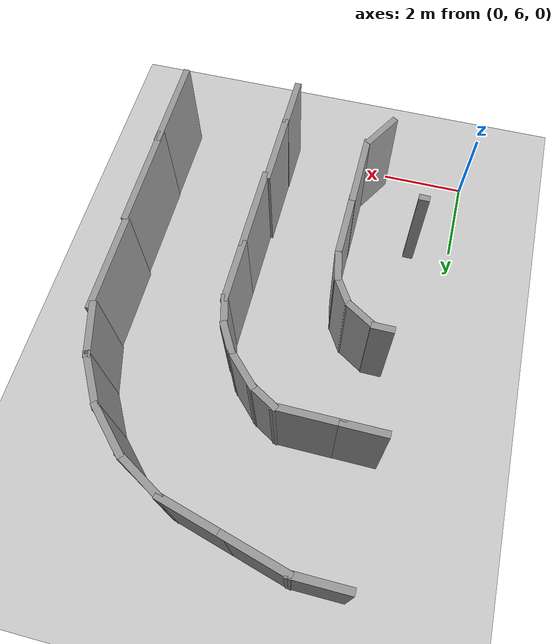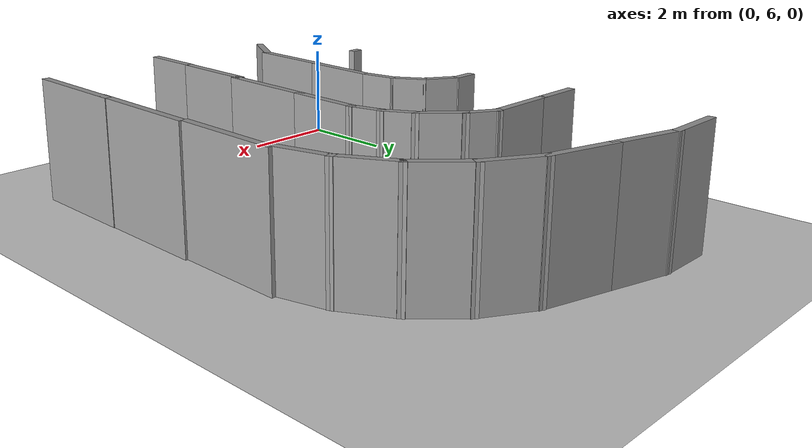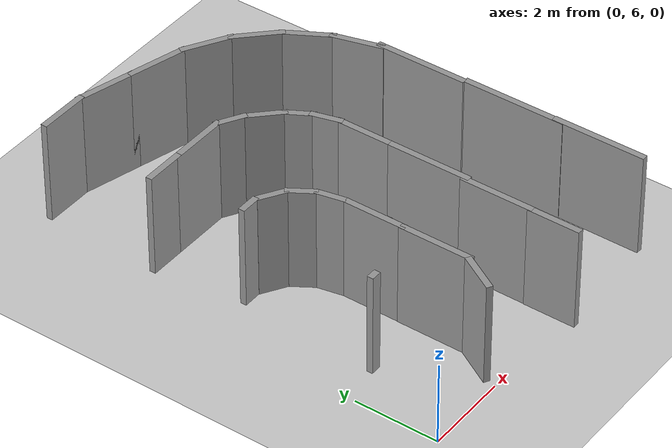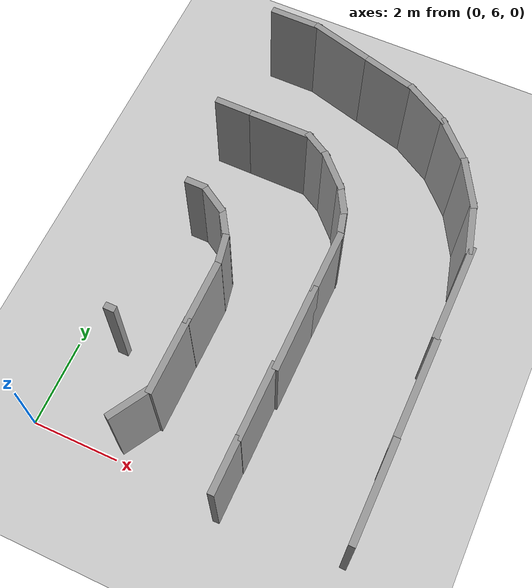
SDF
<sdf version="1.6">
 <world name="default">
  <model name="ground_plane">
   <static>1</static>
   <link name="link">
    <collision name="collision">
     <geometry><plane><normal>0 0 1</normal><size>100 100</size></plane></geometry>
     <surface><friction><ode><mu>100</mu><mu2>50</mu2></ode></friction></surface>
    </collision>
    <visual name="visual">
     <cast_shadows>0</cast_shadows>
     <geometry><plane><normal>0 0 1</normal><size>100 100</size></plane></geometry>
     <material>
      <script><uri>file://media/materials/scripts/gazebo.material</uri><name>Gazebo/Grey</name></script>
     </material>
    </visual>
   </link>
  </model>
  <model name="c-Snail_update">
   <link name="Wall_19">
    <pose>0.800174 -5.81597 0 0 -0 0</pose>
    <visual name="Wall_19_Visual">
     <pose>0 0 1.25 0 -0 0</pose>
     <geometry><box><size>2.25 0.15 2.5</size></box></geometry>
     <material>
      <script><uri>file://media/materials/scripts/gazebo.material</uri><name>Gazebo/Grey</name></script>
      <ambient>1 1 1 1</ambient>
     </material>
     <meta><layer>0</layer></meta>
    </visual>
    <collision name="Wall_19_Collision">
     <pose>0 0 1.25 0 -0 0</pose>
     <geometry><box><size>2.25 0.15 2.5</size></box></geometry>
     <surface>
      <friction>
       <ode><mu>1</mu><mu2>1</mu2><fdir1>0 0 0</fdir1><slip1>0</slip1><slip2>0</slip2></ode>
       <torsional>
        <coefficient>1</coefficient>
        <patch_radius>0</patch_radius>
        <surface_radius>0</surface_radius>
        <use_patch_radius>1</use_patch_radius>
        <ode><slip>0</slip></ode>
       </torsional>
      </friction>
      <bounce><restitution_coefficient>0</restitution_coefficient><threshold>1e+06</threshold></bounce>
      <contact>
       <collide_without_contact>0</collide_without_contact>
       <collide_without_contact_bitmask>1</collide_without_contact_bitmask>
       <collide_bitmask>1</collide_bitmask>
       <ode>
        <soft_cfm>0</soft_cfm>
        <soft_erp>0.2</soft_erp>
        <kp>1e+13</kp>
        <kd>1</kd>
        <max_vel>0.01</max_vel>
        <min_depth>0</min_depth>
       </ode>
       <bullet>
        <split_impulse>1</split_impulse>
        <split_impulse_penetration_threshold>-0.01</split_impulse_penetration_threshold>
        <soft_cfm>0</soft_cfm>
        <soft_erp>0.2</soft_erp>
        <kp>1e+13</kp>
        <kd>1</kd>
       </bullet>
      </contact>
     </surface>
    </collision>
   </link>
   <link name="Wall_20">
    <pose>2.90214 -5.80096 0 0 -0 0</pose>
    <visual name="Wall_20_Visual">
     <pose>0 0 1.25 0 -0 0</pose>
     <geometry><box><size>2.5 0.15 2.5</size></box></geometry>
     <material>
      <script><uri>file://media/materials/scripts/gazebo.material</uri><name>Gazebo/Grey</name></script>
      <ambient>1 1 1 1</ambient>
     </material>
     <meta><layer>0</layer></meta>
    </visual>
    <collision name="Wall_20_Collision">
     <pose>0 0 1.25 0 -0 0</pose>
     <geometry><box><size>2.5 0.15 2.5</size></box></geometry>
     <surface>
      <friction>
       <ode><mu>1</mu><mu2>1</mu2><fdir1>0 0 0</fdir1><slip1>0</slip1><slip2>0</slip2></ode>
       <torsional>
        <coefficient>1</coefficient>
        <patch_radius>0</patch_radius>
        <surface_radius>0</surface_radius>
        <use_patch_radius>1</use_patch_radius>
        <ode><slip>0</slip></ode>
       </torsional>
      </friction>
      <bounce><restitution_coefficient>0</restitution_coefficient><threshold>1e+06</threshold></bounce>
      <contact>
       <collide_without_contact>0</collide_without_contact>
       <collide_without_contact_bitmask>1</collide_without_contact_bitmask>
       <collide_bitmask>1</collide_bitmask>
       <ode>
        <soft_cfm>0</soft_cfm>
        <soft_erp>0.2</soft_erp>
        <kp>1e+13</kp>
        <kd>1</kd>
        <max_vel>0.01</max_vel>
        <min_depth>0</min_depth>
       </ode>
       <bullet>
        <split_impulse>1</split_impulse>
        <split_impulse_penetration_threshold>-0.01</split_impulse_penetration_threshold>
        <soft_cfm>0</soft_cfm>
        <soft_erp>0.2</soft_erp>
        <kp>1e+13</kp>
        <kd>1</kd>
       </bullet>
      </contact>
     </surface>
    </collision>
   </link>
   <link name="Wall_21">
    <pose>5.25228 -5.75509 0 0 -0 0</pose>
    <visual name="Wall_21_Visual">
     <pose>0 0 1.25 0 -0 0</pose>
     <geometry><box><size>2.25 0.15 2.5</size></box></geometry>
     <material>
      <script><uri>file://media/materials/scripts/gazebo.material</uri><name>Gazebo/Grey</name></script>
      <ambient>1 1 1 1</ambient>
     </material>
     <meta><layer>0</layer></meta>
    </visual>
    <collision name="Wall_21_Collision">
     <pose>0 0 1.25 0 -0 0</pose>
     <geometry><box><size>2.25 0.15 2.5</size></box></geometry>
     <surface>
      <friction>
       <ode><mu>1</mu><mu2>1</mu2><fdir1>0 0 0</fdir1><slip1>0</slip1><slip2>0</slip2></ode>
       <torsional>
        <coefficient>1</coefficient>
        <patch_radius>0</patch_radius>
        <surface_radius>0</surface_radius>
        <use_patch_radius>1</use_patch_radius>
        <ode><slip>0</slip></ode>
       </torsional>
      </friction>
      <bounce><restitution_coefficient>0</restitution_coefficient><threshold>1e+06</threshold></bounce>
      <contact>
       <collide_without_contact>0</collide_without_contact>
       <collide_without_contact_bitmask>1</collide_without_contact_bitmask>
       <collide_bitmask>1</collide_bitmask>
       <ode>
        <soft_cfm>0</soft_cfm>
        <soft_erp>0.2</soft_erp>
        <kp>1e+13</kp>
        <kd>1</kd>
        <max_vel>0.01</max_vel>
        <min_depth>0</min_depth>
       </ode>
       <bullet>
        <split_impulse>1</split_impulse>
        <split_impulse_penetration_threshold>-0.01</split_impulse_penetration_threshold>
        <soft_cfm>0</soft_cfm>
        <soft_erp>0.2</soft_erp>
        <kp>1e+13</kp>
        <kd>1</kd>
       </bullet>
      </contact>
     </surface>
    </collision>
   </link>
   <link name="Wall_22">
    <pose>6.78859 -5.56286 0 0 -0 0.261799</pose>
    <visual name="Wall_22_Visual">
     <pose>0 0 1.25 0 -0 0</pose>
     <geometry><box><size>1.25 0.15 2.5</size></box></geometry>
     <material>
      <script><uri>file://media/materials/scripts/gazebo.material</uri><name>Gazebo/Grey</name></script>
      <ambient>1 1 1 1</ambient>
     </material>
     <meta><layer>0</layer></meta>
    </visual>
    <collision name="Wall_22_Collision">
     <pose>0 0 1.25 0 -0 0</pose>
     <geometry><box><size>1.25 0.15 2.5</size></box></geometry>
     <surface>
      <friction>
       <ode><mu>1</mu><mu2>1</mu2><fdir1>0 0 0</fdir1><slip1>0</slip1><slip2>0</slip2></ode>
       <torsional>
        <coefficient>1</coefficient>
        <patch_radius>0</patch_radius>
        <surface_radius>0</surface_radius>
        <use_patch_radius>1</use_patch_radius>
        <ode><slip>0</slip></ode>
       </torsional>
      </friction>
      <bounce><restitution_coefficient>0</restitution_coefficient><threshold>1e+06</threshold></bounce>
      <contact>
       <collide_without_contact>0</collide_without_contact>
       <collide_without_contact_bitmask>1</collide_without_contact_bitmask>
       <collide_bitmask>1</collide_bitmask>
       <ode>
        <soft_cfm>0</soft_cfm>
        <soft_erp>0.2</soft_erp>
        <kp>1e+13</kp>
        <kd>1</kd>
        <max_vel>0.01</max_vel>
        <min_depth>0</min_depth>
       </ode>
       <bullet>
        <split_impulse>1</split_impulse>
        <split_impulse_penetration_threshold>-0.01</split_impulse_penetration_threshold>
        <soft_cfm>0</soft_cfm>
        <soft_erp>0.2</soft_erp>
        <kp>1e+13</kp>
        <kd>1</kd>
       </bullet>
      </contact>
     </surface>
    </collision>
   </link>
   <link name="Wall_23">
    <pose>7.79617 -5.14551 0 0 -0 0.523599</pose>
    <visual name="Wall_23_Visual">
     <pose>0 0 1.25 0 -0 0</pose>
     <geometry><box><size>1.25 0.15 2.5</size></box></geometry>
     <material>
      <script><uri>file://media/materials/scripts/gazebo.material</uri><name>Gazebo/Grey</name></script>
      <ambient>1 1 1 1</ambient>
     </material>
     <meta><layer>0</layer></meta>
    </visual>
    <collision name="Wall_23_Collision">
     <pose>0 0 1.25 0 -0 0</pose>
     <geometry><box><size>1.25 0.15 2.5</size></box></geometry>
     <surface>
      <friction>
       <ode><mu>1</mu><mu2>1</mu2><fdir1>0 0 0</fdir1><slip1>0</slip1><slip2>0</slip2></ode>
       <torsional>
        <coefficient>1</coefficient>
        <patch_radius>0</patch_radius>
        <surface_radius>0</surface_radius>
        <use_patch_radius>1</use_patch_radius>
        <ode><slip>0</slip></ode>
       </torsional>
      </friction>
      <bounce><restitution_coefficient>0</restitution_coefficient><threshold>1e+06</threshold></bounce>
      <contact>
       <collide_without_contact>0</collide_without_contact>
       <collide_without_contact_bitmask>1</collide_without_contact_bitmask>
       <collide_bitmask>1</collide_bitmask>
       <ode>
        <soft_cfm>0</soft_cfm>
        <soft_erp>0.2</soft_erp>
        <kp>1e+13</kp>
        <kd>1</kd>
        <max_vel>0.01</max_vel>
        <min_depth>0</min_depth>
       </ode>
       <bullet>
        <split_impulse>1</split_impulse>
        <split_impulse_penetration_threshold>-0.01</split_impulse_penetration_threshold>
        <soft_cfm>0</soft_cfm>
        <soft_erp>0.2</soft_erp>
        <kp>1e+13</kp>
        <kd>1</kd>
       </bullet>
      </contact>
     </surface>
    </collision>
   </link>
   <link name="Wall_24">
    <pose>8.66139 -4.4816 0 0 -0 0.785398</pose>
    <visual name="Wall_24_Visual">
     <pose>0 0 1.25 0 -0 0</pose>
     <geometry><box><size>1.25 0.15 2.5</size></box></geometry>
     <material>
      <script><uri>file://media/materials/scripts/gazebo.material</uri><name>Gazebo/Grey</name></script>
      <ambient>1 1 1 1</ambient>
     </material>
     <meta><layer>0</layer></meta>
    </visual>
    <collision name="Wall_24_Collision">
     <pose>0 0 1.25 0 -0 0</pose>
     <geometry><box><size>1.25 0.15 2.5</size></box></geometry>
     <surface>
      <friction>
       <ode><mu>1</mu><mu2>1</mu2><fdir1>0 0 0</fdir1><slip1>0</slip1><slip2>0</slip2></ode>
       <torsional>
        <coefficient>1</coefficient>
        <patch_radius>0</patch_radius>
        <surface_radius>0</surface_radius>
        <use_patch_radius>1</use_patch_radius>
        <ode><slip>0</slip></ode>
       </torsional>
      </friction>
      <bounce><restitution_coefficient>0</restitution_coefficient><threshold>1e+06</threshold></bounce>
      <contact>
       <collide_without_contact>0</collide_without_contact>
       <collide_without_contact_bitmask>1</collide_without_contact_bitmask>
       <collide_bitmask>1</collide_bitmask>
       <ode>
        <soft_cfm>0</soft_cfm>
        <soft_erp>0.2</soft_erp>
        <kp>1e+13</kp>
        <kd>1</kd>
        <max_vel>0.01</max_vel>
        <min_depth>0</min_depth>
       </ode>
       <bullet>
        <split_impulse>1</split_impulse>
        <split_impulse_penetration_threshold>-0.01</split_impulse_penetration_threshold>
        <soft_cfm>0</soft_cfm>
        <soft_erp>0.2</soft_erp>
        <kp>1e+13</kp>
        <kd>1</kd>
       </bullet>
      </contact>
     </surface>
    </collision>
   </link>
   <link name="Wall_25">
    <pose>9.3253 -3.61638 0 0 -0 1.0472</pose>
    <visual name="Wall_25_Visual">
     <pose>0 0 1.25 0 -0 0</pose>
     <geometry><box><size>1.25 0.15 2.5</size></box></geometry>
     <material>
      <script><uri>file://media/materials/scripts/gazebo.material</uri><name>Gazebo/Grey</name></script>
      <ambient>1 1 1 1</ambient>
     </material>
     <meta><layer>0</layer></meta>
    </visual>
    <collision name="Wall_25_Collision">
     <pose>0 0 1.25 0 -0 0</pose>
     <geometry><box><size>1.25 0.15 2.5</size></box></geometry>
     <surface>
      <friction>
       <ode><mu>1</mu><mu2>1</mu2><fdir1>0 0 0</fdir1><slip1>0</slip1><slip2>0</slip2></ode>
       <torsional>
        <coefficient>1</coefficient>
        <patch_radius>0</patch_radius>
        <surface_radius>0</surface_radius>
        <use_patch_radius>1</use_patch_radius>
        <ode><slip>0</slip></ode>
       </torsional>
      </friction>
      <bounce><restitution_coefficient>0</restitution_coefficient><threshold>1e+06</threshold></bounce>
      <contact>
       <collide_without_contact>0</collide_without_contact>
       <collide_without_contact_bitmask>1</collide_without_contact_bitmask>
       <collide_bitmask>1</collide_bitmask>
       <ode>
        <soft_cfm>0</soft_cfm>
        <soft_erp>0.2</soft_erp>
        <kp>1e+13</kp>
        <kd>1</kd>
        <max_vel>0.01</max_vel>
        <min_depth>0</min_depth>
       </ode>
       <bullet>
        <split_impulse>1</split_impulse>
        <split_impulse_penetration_threshold>-0.01</split_impulse_penetration_threshold>
        <soft_cfm>0</soft_cfm>
        <soft_erp>0.2</soft_erp>
        <kp>1e+13</kp>
        <kd>1</kd>
       </bullet>
      </contact>
     </surface>
    </collision>
   </link>
   <link name="Wall_26">
    <pose>9.775 -2.48806 0 0 -0 1.309</pose>
    <visual name="Wall_26_Visual">
     <pose>0 0 1.25 0 -0 0</pose>
     <geometry><box><size>1.5 0.15 2.5</size></box></geometry>
     <material>
      <script><uri>file://media/materials/scripts/gazebo.material</uri><name>Gazebo/Grey</name></script>
      <ambient>1 1 1 1</ambient>
     </material>
     <meta><layer>0</layer></meta>
    </visual>
    <collision name="Wall_26_Collision">
     <pose>0 0 1.25 0 -0 0</pose>
     <geometry><box><size>1.5 0.15 2.5</size></box></geometry>
     <surface>
      <friction>
       <ode><mu>1</mu><mu2>1</mu2><fdir1>0 0 0</fdir1><slip1>0</slip1><slip2>0</slip2></ode>
       <torsional>
        <coefficient>1</coefficient>
        <patch_radius>0</patch_radius>
        <surface_radius>0</surface_radius>
        <use_patch_radius>1</use_patch_radius>
        <ode><slip>0</slip></ode>
       </torsional>
      </friction>
      <bounce><restitution_coefficient>0</restitution_coefficient><threshold>1e+06</threshold></bounce>
      <contact>
       <collide_without_contact>0</collide_without_contact>
       <collide_without_contact_bitmask>1</collide_without_contact_bitmask>
       <collide_bitmask>1</collide_bitmask>
       <ode>
        <soft_cfm>0</soft_cfm>
        <soft_erp>0.2</soft_erp>
        <kp>1e+13</kp>
        <kd>1</kd>
        <max_vel>0.01</max_vel>
        <min_depth>0</min_depth>
       </ode>
       <bullet>
        <split_impulse>1</split_impulse>
        <split_impulse_penetration_threshold>-0.01</split_impulse_penetration_threshold>
        <soft_cfm>0</soft_cfm>
        <soft_erp>0.2</soft_erp>
        <kp>1e+13</kp>
        <kd>1</kd>
       </bullet>
      </contact>
     </surface>
    </collision>
   </link>
   <link name="Wall_27">
    <pose>10.1244 -1.18406 0 0 -0 1.309</pose>
    <visual name="Wall_27_Visual">
     <pose>0 0 1.25 0 -0 0</pose>
     <geometry><box><size>1.5 0.15 2.5</size></box></geometry>
     <material>
      <script><uri>file://media/materials/scripts/gazebo.material</uri><name>Gazebo/Grey</name></script>
      <ambient>1 1 1 1</ambient>
     </material>
     <meta><layer>0</layer></meta>
    </visual>
    <collision name="Wall_27_Collision">
     <pose>0 0 1.25 0 -0 0</pose>
     <geometry><box><size>1.5 0.15 2.5</size></box></geometry>
     <surface>
      <friction>
       <ode><mu>1</mu><mu2>1</mu2><fdir1>0 0 0</fdir1><slip1>0</slip1><slip2>0</slip2></ode>
       <torsional>
        <coefficient>1</coefficient>
        <patch_radius>0</patch_radius>
        <surface_radius>0</surface_radius>
        <use_patch_radius>1</use_patch_radius>
        <ode><slip>0</slip></ode>
       </torsional>
      </friction>
      <bounce><restitution_coefficient>0</restitution_coefficient><threshold>1e+06</threshold></bounce>
      <contact>
       <collide_without_contact>0</collide_without_contact>
       <collide_without_contact_bitmask>1</collide_without_contact_bitmask>
       <collide_bitmask>1</collide_bitmask>
       <ode>
        <soft_cfm>0</soft_cfm>
        <soft_erp>0.2</soft_erp>
        <kp>1e+13</kp>
        <kd>1</kd>
        <max_vel>0.01</max_vel>
        <min_depth>0</min_depth>
       </ode>
       <bullet>
        <split_impulse>1</split_impulse>
        <split_impulse_penetration_threshold>-0.01</split_impulse_penetration_threshold>
        <soft_cfm>0</soft_cfm>
        <soft_erp>0.2</soft_erp>
        <kp>1e+13</kp>
        <kd>1</kd>
       </bullet>
      </contact>
     </surface>
    </collision>
   </link>
   <link name="Wall_28">
    <pose>10.2991 0.017937 0 0 -0 1.5708</pose>
    <visual name="Wall_28_Visual">
     <pose>0 0 1.25 0 -0 0</pose>
     <geometry><box><size>1.25 0.15 2.5</size></box></geometry>
     <material>
      <script><uri>file://media/materials/scripts/gazebo.material</uri><name>Gazebo/Grey</name></script>
      <ambient>1 1 1 1</ambient>
     </material>
     <meta><layer>0</layer></meta>
    </visual>
    <collision name="Wall_28_Collision">
     <pose>0 0 1.25 0 -0 0</pose>
     <geometry><box><size>1.25 0.15 2.5</size></box></geometry>
     <surface>
      <friction>
       <ode><mu>1</mu><mu2>1</mu2><fdir1>0 0 0</fdir1><slip1>0</slip1><slip2>0</slip2></ode>
       <torsional>
        <coefficient>1</coefficient>
        <patch_radius>0</patch_radius>
        <surface_radius>0</surface_radius>
        <use_patch_radius>1</use_patch_radius>
        <ode><slip>0</slip></ode>
       </torsional>
      </friction>
      <bounce><restitution_coefficient>0</restitution_coefficient><threshold>1e+06</threshold></bounce>
      <contact>
       <collide_without_contact>0</collide_without_contact>
       <collide_without_contact_bitmask>1</collide_without_contact_bitmask>
       <collide_bitmask>1</collide_bitmask>
       <ode>
        <soft_cfm>0</soft_cfm>
        <soft_erp>0.2</soft_erp>
        <kp>1e+13</kp>
        <kd>1</kd>
        <max_vel>0.01</max_vel>
        <min_depth>0</min_depth>
       </ode>
       <bullet>
        <split_impulse>1</split_impulse>
        <split_impulse_penetration_threshold>-0.01</split_impulse_penetration_threshold>
        <soft_cfm>0</soft_cfm>
        <soft_erp>0.2</soft_erp>
        <kp>1e+13</kp>
        <kd>1</kd>
       </bullet>
      </contact>
     </surface>
    </collision>
   </link>
   <link name="Wall_46">
    <pose>0.062812 -3.06018 0 0 -0 0</pose>
    <visual name="Wall_46_Visual">
     <pose>0 0 1.25 0 -0 0</pose>
     <geometry><box><size>1.25 0.15 2.5</size></box></geometry>
     <material>
      <script><uri>file://media/materials/scripts/gazebo.material</uri><name>Gazebo/Grey</name></script>
      <ambient>1 1 1 1</ambient>
     </material>
     <meta><layer>0</layer></meta>
    </visual>
    <collision name="Wall_46_Collision">
     <pose>0 0 1.25 0 -0 0</pose>
     <geometry><box><size>1.25 0.15 2.5</size></box></geometry>
     <surface>
      <friction>
       <ode><mu>1</mu><mu2>1</mu2><fdir1>0 0 0</fdir1><slip1>0</slip1><slip2>0</slip2></ode>
       <torsional>
        <coefficient>1</coefficient>
        <patch_radius>0</patch_radius>
        <surface_radius>0</surface_radius>
        <use_patch_radius>1</use_patch_radius>
        <ode><slip>0</slip></ode>
       </torsional>
      </friction>
      <bounce><restitution_coefficient>0</restitution_coefficient><threshold>1e+06</threshold></bounce>
      <contact>
       <collide_without_contact>0</collide_without_contact>
       <collide_without_contact_bitmask>1</collide_without_contact_bitmask>
       <collide_bitmask>1</collide_bitmask>
       <ode>
        <soft_cfm>0</soft_cfm>
        <soft_erp>0.2</soft_erp>
        <kp>1e+13</kp>
        <kd>1</kd>
        <max_vel>0.01</max_vel>
        <min_depth>0</min_depth>
       </ode>
       <bullet>
        <split_impulse>1</split_impulse>
        <split_impulse_penetration_threshold>-0.01</split_impulse_penetration_threshold>
        <soft_cfm>0</soft_cfm>
        <soft_erp>0.2</soft_erp>
        <kp>1e+13</kp>
        <kd>1</kd>
       </bullet>
      </contact>
     </surface>
    </collision>
   </link>
   <link name="Wall_47">
    <pose>1.4692 -3.06934 0 0 -0 0</pose>
    <visual name="Wall_47_Visual">
     <pose>0 0 1.25 0 -0 0</pose>
     <geometry><box><size>1.75 0.15 2.5</size></box></geometry>
     <material>
      <script><uri>file://media/materials/scripts/gazebo.material</uri><name>Gazebo/Grey</name></script>
      <ambient>1 1 1 1</ambient>
     </material>
     <meta><layer>0</layer></meta>
    </visual>
    <collision name="Wall_47_Collision">
     <pose>0 0 1.25 0 -0 0</pose>
     <geometry><box><size>1.75 0.15 2.5</size></box></geometry>
     <surface>
      <friction>
       <ode><mu>1</mu><mu2>1</mu2><fdir1>0 0 0</fdir1><slip1>0</slip1><slip2>0</slip2></ode>
       <torsional>
        <coefficient>1</coefficient>
        <patch_radius>0</patch_radius>
        <surface_radius>0</surface_radius>
        <use_patch_radius>1</use_patch_radius>
        <ode><slip>0</slip></ode>
       </torsional>
      </friction>
      <bounce><restitution_coefficient>0</restitution_coefficient><threshold>1e+06</threshold></bounce>
      <contact>
       <collide_without_contact>0</collide_without_contact>
       <collide_without_contact_bitmask>1</collide_without_contact_bitmask>
       <collide_bitmask>1</collide_bitmask>
       <ode>
        <soft_cfm>0</soft_cfm>
        <soft_erp>0.2</soft_erp>
        <kp>1e+13</kp>
        <kd>1</kd>
        <max_vel>0.01</max_vel>
        <min_depth>0</min_depth>
       </ode>
       <bullet>
        <split_impulse>1</split_impulse>
        <split_impulse_penetration_threshold>-0.01</split_impulse_penetration_threshold>
        <soft_cfm>0</soft_cfm>
        <soft_erp>0.2</soft_erp>
        <kp>1e+13</kp>
        <kd>1</kd>
       </bullet>
      </contact>
     </surface>
    </collision>
   </link>
   <link name="Wall_48">
    <pose>3.18497 -3.12574 0 0 -0 0</pose>
    <visual name="Wall_48_Visual">
     <pose>0 0 1.25 0 -0 0</pose>
     <geometry><box><size>2 0.15 2.5</size></box></geometry>
     <material>
      <script><uri>file://media/materials/scripts/gazebo.material</uri><name>Gazebo/Grey</name></script>
      <ambient>1 1 1 1</ambient>
     </material>
     <meta><layer>0</layer></meta>
    </visual>
    <collision name="Wall_48_Collision">
     <pose>0 0 1.25 0 -0 0</pose>
     <geometry><box><size>2 0.15 2.5</size></box></geometry>
     <surface>
      <friction>
       <ode><mu>1</mu><mu2>1</mu2><fdir1>0 0 0</fdir1><slip1>0</slip1><slip2>0</slip2></ode>
       <torsional>
        <coefficient>1</coefficient>
        <patch_radius>0</patch_radius>
        <surface_radius>0</surface_radius>
        <use_patch_radius>1</use_patch_radius>
        <ode><slip>0</slip></ode>
       </torsional>
      </friction>
      <bounce><restitution_coefficient>0</restitution_coefficient><threshold>1e+06</threshold></bounce>
      <contact>
       <collide_without_contact>0</collide_without_contact>
       <collide_without_contact_bitmask>1</collide_without_contact_bitmask>
       <collide_bitmask>1</collide_bitmask>
       <ode>
        <soft_cfm>0</soft_cfm>
        <soft_erp>0.2</soft_erp>
        <kp>1e+13</kp>
        <kd>1</kd>
        <max_vel>0.01</max_vel>
        <min_depth>0</min_depth>
       </ode>
       <bullet>
        <split_impulse>1</split_impulse>
        <split_impulse_penetration_threshold>-0.01</split_impulse_penetration_threshold>
        <soft_cfm>0</soft_cfm>
        <soft_erp>0.2</soft_erp>
        <kp>1e+13</kp>
        <kd>1</kd>
       </bullet>
      </contact>
     </surface>
    </collision>
   </link>
   <link name="Wall_49">
    <pose>4.78497 -3.12574 0 0 -0 0</pose>
    <visual name="Wall_49_Visual">
     <pose>0 0 1.25 0 -0 0</pose>
     <geometry><box><size>1.5 0.15 2.5</size></box></geometry>
     <material>
      <script><uri>file://media/materials/scripts/gazebo.material</uri><name>Gazebo/Grey</name></script>
      <ambient>1 1 1 1</ambient>
     </material>
     <meta><layer>0</layer></meta>
    </visual>
    <collision name="Wall_49_Collision">
     <pose>0 0 1.25 0 -0 0</pose>
     <geometry><box><size>1.5 0.15 2.5</size></box></geometry>
     <surface>
      <friction>
       <ode><mu>1</mu><mu2>1</mu2><fdir1>0 0 0</fdir1><slip1>0</slip1><slip2>0</slip2></ode>
       <torsional>
        <coefficient>1</coefficient>
        <patch_radius>0</patch_radius>
        <surface_radius>0</surface_radius>
        <use_patch_radius>1</use_patch_radius>
        <ode><slip>0</slip></ode>
       </torsional>
      </friction>
      <bounce><restitution_coefficient>0</restitution_coefficient><threshold>1e+06</threshold></bounce>
      <contact>
       <collide_without_contact>0</collide_without_contact>
       <collide_without_contact_bitmask>1</collide_without_contact_bitmask>
       <collide_bitmask>1</collide_bitmask>
       <ode>
        <soft_cfm>0</soft_cfm>
        <soft_erp>0.2</soft_erp>
        <kp>1e+13</kp>
        <kd>1</kd>
        <max_vel>0.01</max_vel>
        <min_depth>0</min_depth>
       </ode>
       <bullet>
        <split_impulse>1</split_impulse>
        <split_impulse_penetration_threshold>-0.01</split_impulse_penetration_threshold>
        <soft_cfm>0</soft_cfm>
        <soft_erp>0.2</soft_erp>
        <kp>1e+13</kp>
        <kd>1</kd>
       </bullet>
      </contact>
     </surface>
    </collision>
   </link>
   <link name="Wall_50">
    <pose>5.74975 -3.04809 0 0 -0 0.261799</pose>
    <visual name="Wall_50_Visual">
     <pose>0 0 1.25 0 -0 0</pose>
     <geometry><box><size>0.75 0.15 2.5</size></box></geometry>
     <material>
      <script><uri>file://media/materials/scripts/gazebo.material</uri><name>Gazebo/Grey</name></script>
      <ambient>1 1 1 1</ambient>
     </material>
     <meta><layer>0</layer></meta>
    </visual>
    <collision name="Wall_50_Collision">
     <pose>0 0 1.25 0 -0 0</pose>
     <geometry><box><size>0.75 0.15 2.5</size></box></geometry>
     <surface>
      <friction>
       <ode><mu>1</mu><mu2>1</mu2><fdir1>0 0 0</fdir1><slip1>0</slip1><slip2>0</slip2></ode>
       <torsional>
        <coefficient>1</coefficient>
        <patch_radius>0</patch_radius>
        <surface_radius>0</surface_radius>
        <use_patch_radius>1</use_patch_radius>
        <ode><slip>0</slip></ode>
       </torsional>
      </friction>
      <bounce><restitution_coefficient>0</restitution_coefficient><threshold>1e+06</threshold></bounce>
      <contact>
       <collide_without_contact>0</collide_without_contact>
       <collide_without_contact_bitmask>1</collide_without_contact_bitmask>
       <collide_bitmask>1</collide_bitmask>
       <ode>
        <soft_cfm>0</soft_cfm>
        <soft_erp>0.2</soft_erp>
        <kp>1e+13</kp>
        <kd>1</kd>
        <max_vel>0.01</max_vel>
        <min_depth>0</min_depth>
       </ode>
       <bullet>
        <split_impulse>1</split_impulse>
        <split_impulse_penetration_threshold>-0.01</split_impulse_penetration_threshold>
        <soft_cfm>0</soft_cfm>
        <soft_erp>0.2</soft_erp>
        <kp>1e+13</kp>
        <kd>1</kd>
       </bullet>
      </contact>
     </surface>
    </collision>
   </link>
   <link name="Wall_51">
    <pose>6.29933 -2.82045 0 0 -0 0.523599</pose>
    <visual name="Wall_51_Visual">
     <pose>0 0 1.25 0 -0 0</pose>
     <geometry><box><size>0.75 0.15 2.5</size></box></geometry>
     <material>
      <script><uri>file://media/materials/scripts/gazebo.material</uri><name>Gazebo/Grey</name></script>
      <ambient>1 1 1 1</ambient>
     </material>
     <meta><layer>0</layer></meta>
    </visual>
    <collision name="Wall_51_Collision">
     <pose>0 0 1.25 0 -0 0</pose>
     <geometry><box><size>0.75 0.15 2.5</size></box></geometry>
     <surface>
      <friction>
       <ode><mu>1</mu><mu2>1</mu2><fdir1>0 0 0</fdir1><slip1>0</slip1><slip2>0</slip2></ode>
       <torsional>
        <coefficient>1</coefficient>
        <patch_radius>0</patch_radius>
        <surface_radius>0</surface_radius>
        <use_patch_radius>1</use_patch_radius>
        <ode><slip>0</slip></ode>
       </torsional>
      </friction>
      <bounce><restitution_coefficient>0</restitution_coefficient><threshold>1e+06</threshold></bounce>
      <contact>
       <collide_without_contact>0</collide_without_contact>
       <collide_without_contact_bitmask>1</collide_without_contact_bitmask>
       <collide_bitmask>1</collide_bitmask>
       <ode>
        <soft_cfm>0</soft_cfm>
        <soft_erp>0.2</soft_erp>
        <kp>1e+13</kp>
        <kd>1</kd>
        <max_vel>0.01</max_vel>
        <min_depth>0</min_depth>
       </ode>
       <bullet>
        <split_impulse>1</split_impulse>
        <split_impulse_penetration_threshold>-0.01</split_impulse_penetration_threshold>
        <soft_cfm>0</soft_cfm>
        <soft_erp>0.2</soft_erp>
        <kp>1e+13</kp>
        <kd>1</kd>
       </bullet>
      </contact>
     </surface>
    </collision>
   </link>
   <link name="Wall_52">
    <pose>6.85966 -2.36993 0 0 -0 0.785398</pose>
    <visual name="Wall_52_Visual">
     <pose>0 0 1.25 0 -0 0</pose>
     <geometry><box><size>1 0.15 2.5</size></box></geometry>
     <material>
      <script><uri>file://media/materials/scripts/gazebo.material</uri><name>Gazebo/Grey</name></script>
      <ambient>1 1 1 1</ambient>
     </material>
     <meta><layer>0</layer></meta>
    </visual>
    <collision name="Wall_52_Collision">
     <pose>0 0 1.25 0 -0 0</pose>
     <geometry><box><size>1 0.15 2.5</size></box></geometry>
     <surface>
      <friction>
       <ode><mu>1</mu><mu2>1</mu2><fdir1>0 0 0</fdir1><slip1>0</slip1><slip2>0</slip2></ode>
       <torsional>
        <coefficient>1</coefficient>
        <patch_radius>0</patch_radius>
        <surface_radius>0</surface_radius>
        <use_patch_radius>1</use_patch_radius>
        <ode><slip>0</slip></ode>
       </torsional>
      </friction>
      <bounce><restitution_coefficient>0</restitution_coefficient><threshold>1e+06</threshold></bounce>
      <contact>
       <collide_without_contact>0</collide_without_contact>
       <collide_without_contact_bitmask>1</collide_without_contact_bitmask>
       <collide_bitmask>1</collide_bitmask>
       <ode>
        <soft_cfm>0</soft_cfm>
        <soft_erp>0.2</soft_erp>
        <kp>1e+13</kp>
        <kd>1</kd>
        <max_vel>0.01</max_vel>
        <min_depth>0</min_depth>
       </ode>
       <bullet>
        <split_impulse>1</split_impulse>
        <split_impulse_penetration_threshold>-0.01</split_impulse_penetration_threshold>
        <soft_cfm>0</soft_cfm>
        <soft_erp>0.2</soft_erp>
        <kp>1e+13</kp>
        <kd>1</kd>
       </bullet>
      </contact>
     </surface>
    </collision>
   </link>
   <link name="Wall_53">
    <pose>7.31018 -1.8096 0 0 -0 1.0472</pose>
    <visual name="Wall_53_Visual">
     <pose>0 0 1.25 0 -0 0</pose>
     <geometry><box><size>0.75 0.15 2.5</size></box></geometry>
     <material>
      <script><uri>file://media/materials/scripts/gazebo.material</uri><name>Gazebo/Grey</name></script>
      <ambient>1 1 1 1</ambient>
     </material>
     <meta><layer>0</layer></meta>
    </visual>
    <collision name="Wall_53_Collision">
     <pose>0 0 1.25 0 -0 0</pose>
     <geometry><box><size>0.75 0.15 2.5</size></box></geometry>
     <surface>
      <friction>
       <ode><mu>1</mu><mu2>1</mu2><fdir1>0 0 0</fdir1><slip1>0</slip1><slip2>0</slip2></ode>
       <torsional>
        <coefficient>1</coefficient>
        <patch_radius>0</patch_radius>
        <surface_radius>0</surface_radius>
        <use_patch_radius>1</use_patch_radius>
        <ode><slip>0</slip></ode>
       </torsional>
      </friction>
      <bounce><restitution_coefficient>0</restitution_coefficient><threshold>1e+06</threshold></bounce>
      <contact>
       <collide_without_contact>0</collide_without_contact>
       <collide_without_contact_bitmask>1</collide_without_contact_bitmask>
       <collide_bitmask>1</collide_bitmask>
       <ode>
        <soft_cfm>0</soft_cfm>
        <soft_erp>0.2</soft_erp>
        <kp>1e+13</kp>
        <kd>1</kd>
        <max_vel>0.01</max_vel>
        <min_depth>0</min_depth>
       </ode>
       <bullet>
        <split_impulse>1</split_impulse>
        <split_impulse_penetration_threshold>-0.01</split_impulse_penetration_threshold>
        <soft_cfm>0</soft_cfm>
        <soft_erp>0.2</soft_erp>
        <kp>1e+13</kp>
        <kd>1</kd>
       </bullet>
      </contact>
     </surface>
    </collision>
   </link>
   <link name="Wall_54">
    <pose>7.46018 -0.874794 0 0 -0 1.5708</pose>
    <visual name="Wall_54_Visual">
     <pose>0 0 1.25 0 -0 0</pose>
     <geometry><box><size>1.5 0.15 2.5</size></box></geometry>
     <material>
      <script><uri>file://media/materials/scripts/gazebo.material</uri><name>Gazebo/Grey</name></script>
      <ambient>1 1 1 1</ambient>
     </material>
     <meta><layer>0</layer></meta>
    </visual>
    <collision name="Wall_54_Collision">
     <pose>0 0 1.25 0 -0 0</pose>
     <geometry><box><size>1.5 0.15 2.5</size></box></geometry>
     <surface>
      <friction>
       <ode><mu>1</mu><mu2>1</mu2><fdir1>0 0 0</fdir1><slip1>0</slip1><slip2>0</slip2></ode>
       <torsional>
        <coefficient>1</coefficient>
        <patch_radius>0</patch_radius>
        <surface_radius>0</surface_radius>
        <use_patch_radius>1</use_patch_radius>
        <ode><slip>0</slip></ode>
       </torsional>
      </friction>
      <bounce><restitution_coefficient>0</restitution_coefficient><threshold>1e+06</threshold></bounce>
      <contact>
       <collide_without_contact>0</collide_without_contact>
       <collide_without_contact_bitmask>1</collide_without_contact_bitmask>
       <collide_bitmask>1</collide_bitmask>
       <ode>
        <soft_cfm>0</soft_cfm>
        <soft_erp>0.2</soft_erp>
        <kp>1e+13</kp>
        <kd>1</kd>
        <max_vel>0.01</max_vel>
        <min_depth>0</min_depth>
       </ode>
       <bullet>
        <split_impulse>1</split_impulse>
        <split_impulse_penetration_threshold>-0.01</split_impulse_penetration_threshold>
        <soft_cfm>0</soft_cfm>
        <soft_erp>0.2</soft_erp>
        <kp>1e+13</kp>
        <kd>1</kd>
       </bullet>
      </contact>
     </surface>
    </collision>
   </link>
   <link name="Wall_55">
    <pose>7.46018 0.225207 0 0 -0 1.5708</pose>
    <visual name="Wall_55_Visual">
     <pose>0 0 1.25 0 -0 0</pose>
     <geometry><box><size>1 0.15 2.5</size></box></geometry>
     <material>
      <script><uri>file://media/materials/scripts/gazebo.material</uri><name>Gazebo/Grey</name></script>
      <ambient>1 1 1 1</ambient>
     </material>
     <meta><layer>0</layer></meta>
    </visual>
    <collision name="Wall_55_Collision">
     <pose>0 0 1.25 0 -0 0</pose>
     <geometry><box><size>1 0.15 2.5</size></box></geometry>
     <surface>
      <friction>
       <ode><mu>1</mu><mu2>1</mu2><fdir1>0 0 0</fdir1><slip1>0</slip1><slip2>0</slip2></ode>
       <torsional>
        <coefficient>1</coefficient>
        <patch_radius>0</patch_radius>
        <surface_radius>0</surface_radius>
        <use_patch_radius>1</use_patch_radius>
        <ode><slip>0</slip></ode>
       </torsional>
      </friction>
      <bounce><restitution_coefficient>0</restitution_coefficient><threshold>1e+06</threshold></bounce>
      <contact>
       <collide_without_contact>0</collide_without_contact>
       <collide_without_contact_bitmask>1</collide_without_contact_bitmask>
       <collide_bitmask>1</collide_bitmask>
       <ode>
        <soft_cfm>0</soft_cfm>
        <soft_erp>0.2</soft_erp>
        <kp>1e+13</kp>
        <kd>1</kd>
        <max_vel>0.01</max_vel>
        <min_depth>0</min_depth>
       </ode>
       <bullet>
        <split_impulse>1</split_impulse>
        <split_impulse_penetration_threshold>-0.01</split_impulse_penetration_threshold>
        <soft_cfm>0</soft_cfm>
        <soft_erp>0.2</soft_erp>
        <kp>1e+13</kp>
        <kd>1</kd>
       </bullet>
      </contact>
     </surface>
    </collision>
   </link>
   <link name="Wall_69">
    <pose>0.371942 -0.821214 0 0 0 -0.523599</pose>
    <visual name="Wall_69_Visual">
     <pose>0 0 1.25 0 -0 0</pose>
     <geometry><box><size>1 0.15 2.5</size></box></geometry>
     <material>
      <script><uri>file://media/materials/scripts/gazebo.material</uri><name>Gazebo/Grey</name></script>
      <ambient>1 1 1 1</ambient>
     </material>
     <meta><layer>0</layer></meta>
    </visual>
    <collision name="Wall_69_Collision">
     <pose>0 0 1.25 0 -0 0</pose>
     <geometry><box><size>1 0.15 2.5</size></box></geometry>
     <surface>
      <friction>
       <ode><mu>1</mu><mu2>1</mu2><fdir1>0 0 0</fdir1><slip1>0</slip1><slip2>0</slip2></ode>
       <torsional>
        <coefficient>1</coefficient>
        <patch_radius>0</patch_radius>
        <surface_radius>0</surface_radius>
        <use_patch_radius>1</use_patch_radius>
        <ode><slip>0</slip></ode>
       </torsional>
      </friction>
      <bounce><restitution_coefficient>0</restitution_coefficient><threshold>1e+06</threshold></bounce>
      <contact>
       <collide_without_contact>0</collide_without_contact>
       <collide_without_contact_bitmask>1</collide_without_contact_bitmask>
       <collide_bitmask>1</collide_bitmask>
       <ode>
        <soft_cfm>0</soft_cfm>
        <soft_erp>0.2</soft_erp>
        <kp>1e+13</kp>
        <kd>1</kd>
        <max_vel>0.01</max_vel>
        <min_depth>0</min_depth>
       </ode>
       <bullet>
        <split_impulse>1</split_impulse>
        <split_impulse_penetration_threshold>-0.01</split_impulse_penetration_threshold>
        <soft_cfm>0</soft_cfm>
        <soft_erp>0.2</soft_erp>
        <kp>1e+13</kp>
        <kd>1</kd>
       </bullet>
      </contact>
     </surface>
    </collision>
   </link>
   <link name="Wall_70">
    <pose>1.58585 -1.08327 0 0 -0 0</pose>
    <visual name="Wall_70_Visual">
     <pose>0 0 1.25 0 -0 0</pose>
     <geometry><box><size>1.75 0.15 2.5</size></box></geometry>
     <material>
      <script><uri>file://media/materials/scripts/gazebo.material</uri><name>Gazebo/Grey</name></script>
      <ambient>1 1 1 1</ambient>
     </material>
     <meta><layer>0</layer></meta>
    </visual>
    <collision name="Wall_70_Collision">
     <pose>0 0 1.25 0 -0 0</pose>
     <geometry><box><size>1.75 0.15 2.5</size></box></geometry>
     <surface>
      <friction>
       <ode><mu>1</mu><mu2>1</mu2><fdir1>0 0 0</fdir1><slip1>0</slip1><slip2>0</slip2></ode>
       <torsional>
        <coefficient>1</coefficient>
        <patch_radius>0</patch_radius>
        <surface_radius>0</surface_radius>
        <use_patch_radius>1</use_patch_radius>
        <ode><slip>0</slip></ode>
       </torsional>
      </friction>
      <bounce><restitution_coefficient>0</restitution_coefficient><threshold>1e+06</threshold></bounce>
      <contact>
       <collide_without_contact>0</collide_without_contact>
       <collide_without_contact_bitmask>1</collide_without_contact_bitmask>
       <collide_bitmask>1</collide_bitmask>
       <ode>
        <soft_cfm>0</soft_cfm>
        <soft_erp>0.2</soft_erp>
        <kp>1e+13</kp>
        <kd>1</kd>
        <max_vel>0.01</max_vel>
        <min_depth>0</min_depth>
       </ode>
       <bullet>
        <split_impulse>1</split_impulse>
        <split_impulse_penetration_threshold>-0.01</split_impulse_penetration_threshold>
        <soft_cfm>0</soft_cfm>
        <soft_erp>0.2</soft_erp>
        <kp>1e+13</kp>
        <kd>1</kd>
       </bullet>
      </contact>
     </surface>
    </collision>
   </link>
   <link name="Wall_71">
    <pose>3.077 -1.08935 0 0 -0 0</pose>
    <visual name="Wall_71_Visual">
     <pose>0 0 1.25 0 -0 0</pose>
     <geometry><box><size>1.5 0.15 2.5</size></box></geometry>
     <material>
      <script><uri>file://media/materials/scripts/gazebo.material</uri><name>Gazebo/Grey</name></script>
      <ambient>1 1 1 1</ambient>
     </material>
     <meta><layer>0</layer></meta>
    </visual>
    <collision name="Wall_71_Collision">
     <pose>0 0 1.25 0 -0 0</pose>
     <geometry><box><size>1.5 0.15 2.5</size></box></geometry>
     <surface>
      <friction>
       <ode><mu>1</mu><mu2>1</mu2><fdir1>0 0 0</fdir1><slip1>0</slip1><slip2>0</slip2></ode>
       <torsional>
        <coefficient>1</coefficient>
        <patch_radius>0</patch_radius>
        <surface_radius>0</surface_radius>
        <use_patch_radius>1</use_patch_radius>
        <ode><slip>0</slip></ode>
       </torsional>
      </friction>
      <bounce><restitution_coefficient>0</restitution_coefficient><threshold>1e+06</threshold></bounce>
      <contact>
       <collide_without_contact>0</collide_without_contact>
       <collide_without_contact_bitmask>1</collide_without_contact_bitmask>
       <collide_bitmask>1</collide_bitmask>
       <ode>
        <soft_cfm>0</soft_cfm>
        <soft_erp>0.2</soft_erp>
        <kp>1e+13</kp>
        <kd>1</kd>
        <max_vel>0.01</max_vel>
        <min_depth>0</min_depth>
       </ode>
       <bullet>
        <split_impulse>1</split_impulse>
        <split_impulse_penetration_threshold>-0.01</split_impulse_penetration_threshold>
        <soft_cfm>0</soft_cfm>
        <soft_erp>0.2</soft_erp>
        <kp>1e+13</kp>
        <kd>1</kd>
       </bullet>
      </contact>
     </surface>
    </collision>
   </link>
   <link name="Wall_73">
    <pose>5.12974 -0.354554 0 0 -0 1.02139</pose>
    <visual name="Wall_73_Visual">
     <pose>0 0 1.25 0 -0 0</pose>
     <geometry><box><size>0.701928 0.15 2.5</size></box></geometry>
     <material>
      <script><uri>file://media/materials/scripts/gazebo.material</uri><name>Gazebo/Grey</name></script>
      <ambient>1 1 1 1</ambient>
     </material>
     <meta><layer>0</layer></meta>
    </visual>
    <collision name="Wall_73_Collision">
     <pose>0 0 1.25 0 -0 0</pose>
     <geometry><box><size>0.701928 0.15 2.5</size></box></geometry>
     <surface>
      <friction>
       <ode><mu>1</mu><mu2>1</mu2><fdir1>0 0 0</fdir1><slip1>0</slip1><slip2>0</slip2></ode>
       <torsional>
        <coefficient>1</coefficient>
        <patch_radius>0</patch_radius>
        <surface_radius>0</surface_radius>
        <use_patch_radius>1</use_patch_radius>
        <ode><slip>0</slip></ode>
       </torsional>
      </friction>
      <bounce><restitution_coefficient>0</restitution_coefficient><threshold>1e+06</threshold></bounce>
      <contact>
       <collide_without_contact>0</collide_without_contact>
       <collide_without_contact_bitmask>1</collide_without_contact_bitmask>
       <collide_bitmask>1</collide_bitmask>
       <ode>
        <soft_cfm>0</soft_cfm>
        <soft_erp>0.2</soft_erp>
        <kp>1e+13</kp>
        <kd>1</kd>
        <max_vel>0.01</max_vel>
        <min_depth>0</min_depth>
       </ode>
       <bullet>
        <split_impulse>1</split_impulse>
        <split_impulse_penetration_threshold>-0.01</split_impulse_penetration_threshold>
        <soft_cfm>0</soft_cfm>
        <soft_erp>0.2</soft_erp>
        <kp>1e+13</kp>
        <kd>1</kd>
       </bullet>
      </contact>
     </surface>
    </collision>
   </link>
   <link name="Wall_73_clone">
    <pose>4.14736 -1.02426 0 0 -0 0.199421</pose>
    <visual name="Wall_73_Visual">
     <pose>0 0 1.25 0 -0 0</pose>
     <geometry><box><size>0.701928 0.15 2.5</size></box></geometry>
     <material>
      <script><uri>file://media/materials/scripts/gazebo.material</uri><name>Gazebo/Grey</name></script>
      <ambient>1 1 1 1</ambient>
      <shader type="pixel"/>
     </material>
     <meta><layer>0</layer></meta>
    </visual>
    <collision name="Wall_73_Collision">
     <pose>0 0 1.25 0 -0 0</pose>
     <geometry><box><size>0.701928 0.15 2.5</size></box></geometry>
     <surface>
      <friction>
       <ode><mu>1</mu><mu2>1</mu2><fdir1>0 0 0</fdir1><slip1>0</slip1><slip2>0</slip2></ode>
       <torsional>
        <coefficient>1</coefficient>
        <patch_radius>0</patch_radius>
        <surface_radius>0</surface_radius>
        <use_patch_radius>1</use_patch_radius>
        <ode><slip>0</slip></ode>
       </torsional>
      </friction>
      <bounce><restitution_coefficient>0</restitution_coefficient><threshold>1e+06</threshold></bounce>
      <contact>
       <collide_without_contact>0</collide_without_contact>
       <collide_without_contact_bitmask>1</collide_without_contact_bitmask>
       <collide_bitmask>1</collide_bitmask>
       <ode>
        <soft_cfm>0</soft_cfm>
        <soft_erp>0.2</soft_erp>
        <kp>1e+13</kp>
        <kd>1</kd>
        <max_vel>0.01</max_vel>
        <min_depth>0</min_depth>
       </ode>
       <bullet>
        <split_impulse>1</split_impulse>
        <split_impulse_penetration_threshold>-0.01</split_impulse_penetration_threshold>
        <soft_cfm>0</soft_cfm>
        <soft_erp>0.2</soft_erp>
        <kp>1e+13</kp>
        <kd>1</kd>
       </bullet>
      </contact>
     </surface>
    </collision>
   </link>
   <link name="Wall_73_clone_clone">
    <pose>4.71444 -0.792318 0 0 -0 0.571827</pose>
    <visual name="Wall_73_Visual">
     <pose>0 0 1.25 0 -0 0</pose>
     <geometry><box><size>0.701928 0.15 2.5</size></box></geometry>
     <material>
      <script><uri>file://media/materials/scripts/gazebo.material</uri><name>Gazebo/Grey</name></script>
      <ambient>1 1 1 1</ambient>
      <shader type="pixel"/>
     </material>
     <meta><layer>0</layer></meta>
    </visual>
    <collision name="Wall_73_Collision">
     <pose>0 0 1.25 0 -0 0</pose>
     <geometry><box><size>0.701928 0.15 2.5</size></box></geometry>
     <surface>
      <friction>
       <ode><mu>1</mu><mu2>1</mu2><fdir1>0 0 0</fdir1><slip1>0</slip1><slip2>0</slip2></ode>
       <torsional>
        <coefficient>1</coefficient>
        <patch_radius>0</patch_radius>
        <surface_radius>0</surface_radius>
        <use_patch_radius>1</use_patch_radius>
        <ode><slip>0</slip></ode>
       </torsional>
      </friction>
      <bounce><restitution_coefficient>0</restitution_coefficient><threshold>1e+06</threshold></bounce>
      <contact>
       <collide_without_contact>0</collide_without_contact>
       <collide_without_contact_bitmask>1</collide_without_contact_bitmask>
       <collide_bitmask>1</collide_bitmask>
       <ode>
        <soft_cfm>0</soft_cfm>
        <soft_erp>0.2</soft_erp>
        <kp>1e+13</kp>
        <kd>1</kd>
        <max_vel>0.01</max_vel>
        <min_depth>0</min_depth>
       </ode>
       <bullet>
        <split_impulse>1</split_impulse>
        <split_impulse_penetration_threshold>-0.01</split_impulse_penetration_threshold>
        <soft_cfm>0</soft_cfm>
        <soft_erp>0.2</soft_erp>
        <kp>1e+13</kp>
        <kd>1</kd>
       </bullet>
      </contact>
     </surface>
    </collision>
   </link>
   <link name="Wall_77">
    <pose>5.3252 0.164833 0 0 -0 1.5708</pose>
    <visual name="Wall_77_Visual">
     <pose>0 0 1.25 0 -0 0</pose>
     <geometry><box><size>0.5 0.15 2.5</size></box></geometry>
     <material>
      <script><uri>file://media/materials/scripts/gazebo.material</uri><name>Gazebo/Grey</name></script>
      <ambient>1 1 1 1</ambient>
     </material>
     <meta><layer>0</layer></meta>
    </visual>
    <collision name="Wall_77_Collision">
     <pose>0 0 1.25 0 -0 0</pose>
     <geometry><box><size>0.5 0.15 2.5</size></box></geometry>
     <surface>
      <friction>
       <ode><mu>1</mu><mu2>1</mu2><fdir1>0 0 0</fdir1><slip1>0</slip1><slip2>0</slip2></ode>
       <torsional>
        <coefficient>1</coefficient>
        <patch_radius>0</patch_radius>
        <surface_radius>0</surface_radius>
        <use_patch_radius>1</use_patch_radius>
        <ode><slip>0</slip></ode>
       </torsional>
      </friction>
      <bounce><restitution_coefficient>0</restitution_coefficient><threshold>1e+06</threshold></bounce>
      <contact>
       <collide_without_contact>0</collide_without_contact>
       <collide_without_contact_bitmask>1</collide_without_contact_bitmask>
       <collide_bitmask>1</collide_bitmask>
       <ode>
        <soft_cfm>0</soft_cfm>
        <soft_erp>0.2</soft_erp>
        <kp>1e+13</kp>
        <kd>1</kd>
        <max_vel>0.01</max_vel>
        <min_depth>0</min_depth>
       </ode>
       <bullet>
        <split_impulse>1</split_impulse>
        <split_impulse_penetration_threshold>-0.01</split_impulse_penetration_threshold>
        <soft_cfm>0</soft_cfm>
        <soft_erp>0.2</soft_erp>
        <kp>1e+13</kp>
        <kd>1</kd>
       </bullet>
      </contact>
     </surface>
    </collision>
   </link>
   <link name="Wall_88">
    <pose>2.00351 0.461787 0 0 0 -1.5708</pose>
    <visual name="Wall_88_Visual">
     <pose>0 0 1.25 0 -0 0</pose>
     <geometry><box><size>0.25 0.15 2.5</size></box></geometry>
     <material>
      <script><uri>file://media/materials/scripts/gazebo.material</uri><name>Gazebo/Grey</name></script>
      <ambient>1 1 1 1</ambient>
     </material>
     <meta><layer>0</layer></meta>
    </visual>
    <collision name="Wall_88_Collision">
     <pose>0 0 1.25 0 -0 0</pose>
     <geometry><box><size>0.25 0.15 2.5</size></box></geometry>
     <surface>
      <friction>
       <ode><mu>1</mu><mu2>1</mu2><fdir1>0 0 0</fdir1><slip1>0</slip1><slip2>0</slip2></ode>
       <torsional>
        <coefficient>1</coefficient>
        <patch_radius>0</patch_radius>
        <surface_radius>0</surface_radius>
        <use_patch_radius>1</use_patch_radius>
        <ode><slip>0</slip></ode>
       </torsional>
      </friction>
      <bounce><restitution_coefficient>0</restitution_coefficient><threshold>1e+06</threshold></bounce>
      <contact>
       <collide_without_contact>0</collide_without_contact>
       <collide_without_contact_bitmask>1</collide_without_contact_bitmask>
       <collide_bitmask>1</collide_bitmask>
       <ode>
        <soft_cfm>0</soft_cfm>
        <soft_erp>0.2</soft_erp>
        <kp>1e+13</kp>
        <kd>1</kd>
        <max_vel>0.01</max_vel>
        <min_depth>0</min_depth>
       </ode>
       <bullet>
        <split_impulse>1</split_impulse>
        <split_impulse_penetration_threshold>-0.01</split_impulse_penetration_threshold>
        <soft_cfm>0</soft_cfm>
        <soft_erp>0.2</soft_erp>
        <kp>1e+13</kp>
        <kd>1</kd>
       </bullet>
      </contact>
     </surface>
    </collision>
   </link>
   <static>1</static>
   <pose>1.45325 6.27525 0 0 -0 1.56548</pose>
  </model>
 </world>
</sdf>
